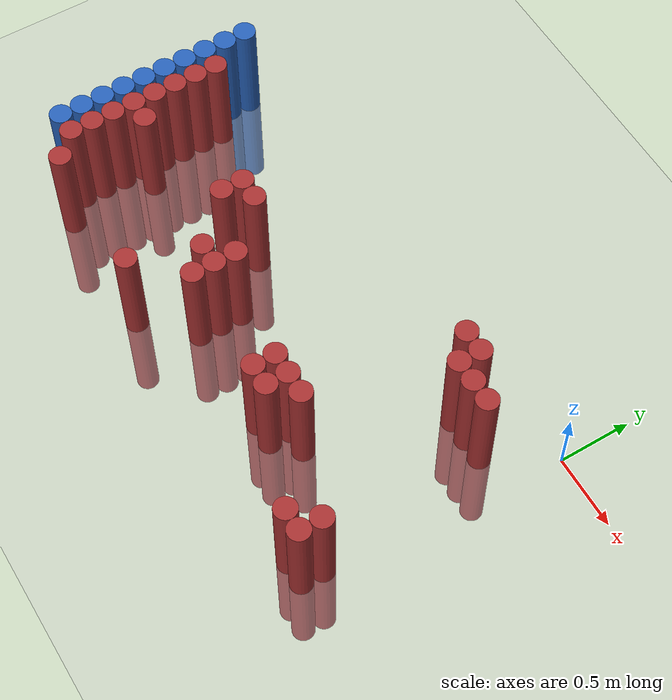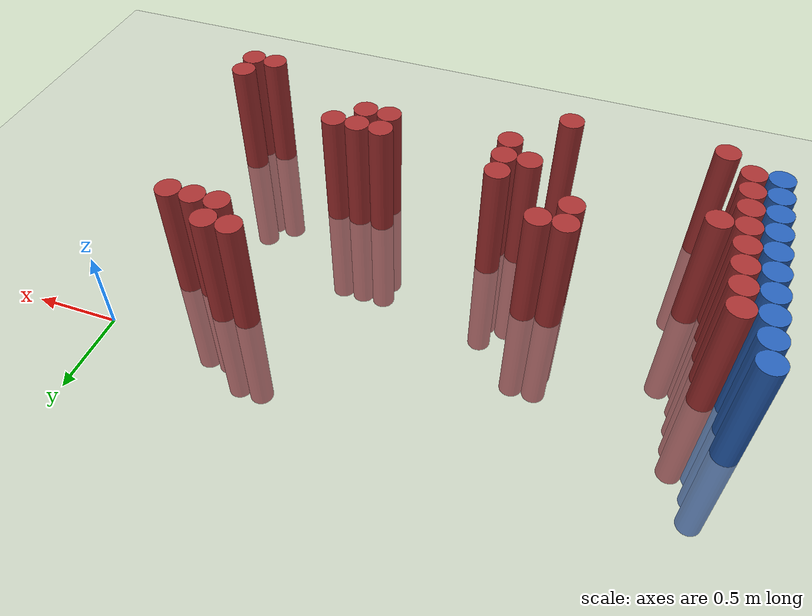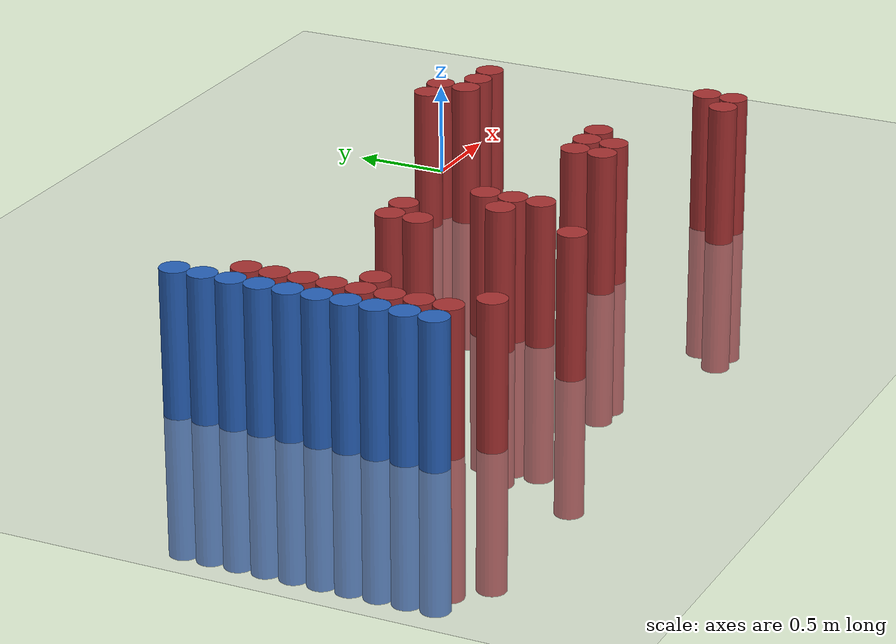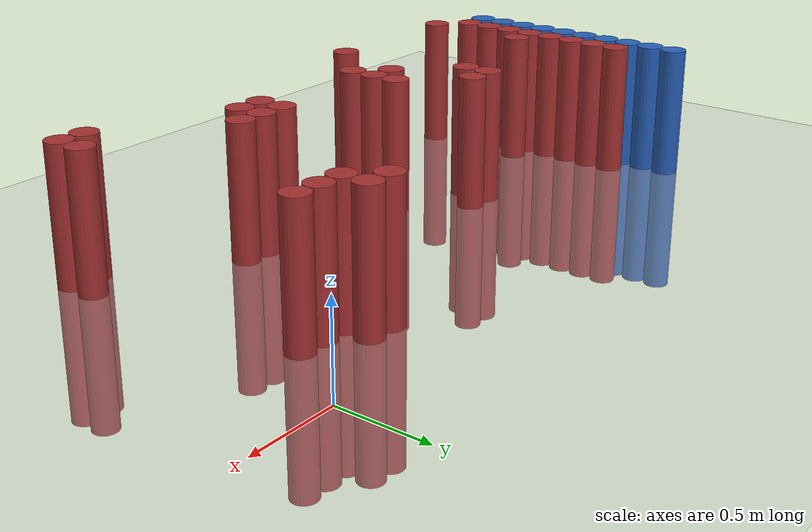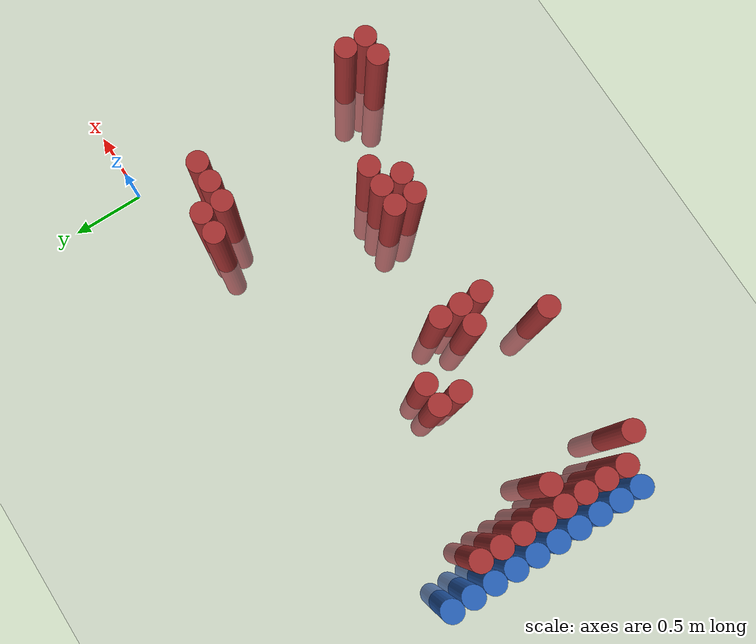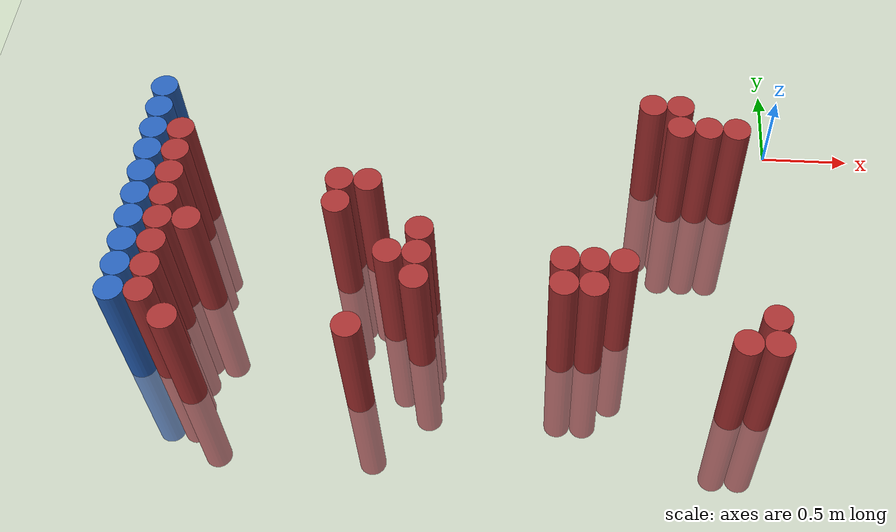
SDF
<sdf version="1.6">
 <world name="default">
  <model name="ground_plane">
   <static>1</static>
   <link name="link">
    <collision name="collision">
     <geometry><plane><normal>0 0 1</normal><size>100 100</size></plane></geometry>
     <surface><friction><ode><mu>100</mu><mu2>50</mu2></ode></friction></surface>
    </collision>
    <visual name="visual">
     <cast_shadows>0</cast_shadows>
     <geometry><plane><normal>0 0 1</normal><size>100 100</size></plane></geometry>
     <material>
      <script><uri>file://media/materials/scripts/gazebo.material</uri><name>Gazebo/Grey</name></script>
     </material>
    </visual>
   </link>
  </model>
  <model name="unit_cylinder_93">
   <static>1</static>
   <pose>-3.425000 -1.625000 0.000000 0.000000 0.000000 0.000000</pose>
   <link name="link">
    <inertial>
     <mass>1</mass>
     <inertia><ixx>0.145833</ixx><ixy>0</ixy><ixz>0</ixz><iyy>0.145833</iyy><iyz>0</iyz><izz>0.125</izz></inertia>
    </inertial>
    <collision name="collision">
     <geometry><cylinder><radius>0.075000</radius><length>1.5</length></cylinder></geometry>
    </collision>
    <visual name="visual">
     <geometry><cylinder><radius>0.075000</radius><length>1.5</length></cylinder></geometry>
     <material>
      <ambient>0.152000 0.379000 0.720000 1</ambient>
      <diffuse>0.152000 0.379000 0.720000 1</diffuse>
     </material>
     <material>
      <script><name>Gazebo/Grey</name><uri>file://media/materials/scripts/gazebo.material</uri></script>
     </material>
    </visual>
   </link>
  </model>
  <model name="unit_cylinder_95">
   <static>1</static>
   <pose>-3.425000 -1.475000 0.000000 0.000000 0.000000 0.000000</pose>
   <link name="link">
    <inertial>
     <mass>1</mass>
     <inertia><ixx>0.145833</ixx><ixy>0</ixy><ixz>0</ixz><iyy>0.145833</iyy><iyz>0</iyz><izz>0.125</izz></inertia>
    </inertial>
    <collision name="collision">
     <geometry><cylinder><radius>0.075000</radius><length>1.5</length></cylinder></geometry>
    </collision>
    <visual name="visual">
     <geometry><cylinder><radius>0.075000</radius><length>1.5</length></cylinder></geometry>
     <material>
      <ambient>0.152000 0.379000 0.720000 1</ambient>
      <diffuse>0.152000 0.379000 0.720000 1</diffuse>
     </material>
     <material>
      <script><name>Gazebo/Grey</name><uri>file://media/materials/scripts/gazebo.material</uri></script>
     </material>
    </visual>
   </link>
  </model>
  <model name="unit_cylinder_97">
   <static>1</static>
   <pose>-3.425000 -1.325000 0.000000 0.000000 0.000000 0.000000</pose>
   <link name="link">
    <inertial>
     <mass>1</mass>
     <inertia><ixx>0.145833</ixx><ixy>0</ixy><ixz>0</ixz><iyy>0.145833</iyy><iyz>0</iyz><izz>0.125</izz></inertia>
    </inertial>
    <collision name="collision">
     <geometry><cylinder><radius>0.075000</radius><length>1.5</length></cylinder></geometry>
    </collision>
    <visual name="visual">
     <geometry><cylinder><radius>0.075000</radius><length>1.5</length></cylinder></geometry>
     <material>
      <ambient>0.152000 0.379000 0.720000 1</ambient>
      <diffuse>0.152000 0.379000 0.720000 1</diffuse>
     </material>
     <material>
      <script><name>Gazebo/Grey</name><uri>file://media/materials/scripts/gazebo.material</uri></script>
     </material>
    </visual>
   </link>
  </model>
  <model name="unit_cylinder_99">
   <static>1</static>
   <pose>-3.425000 -1.175000 0.000000 0.000000 0.000000 0.000000</pose>
   <link name="link">
    <inertial>
     <mass>1</mass>
     <inertia><ixx>0.145833</ixx><ixy>0</ixy><ixz>0</ixz><iyy>0.145833</iyy><iyz>0</iyz><izz>0.125</izz></inertia>
    </inertial>
    <collision name="collision">
     <geometry><cylinder><radius>0.075000</radius><length>1.5</length></cylinder></geometry>
    </collision>
    <visual name="visual">
     <geometry><cylinder><radius>0.075000</radius><length>1.5</length></cylinder></geometry>
     <material>
      <ambient>0.152000 0.379000 0.720000 1</ambient>
      <diffuse>0.152000 0.379000 0.720000 1</diffuse>
     </material>
     <material>
      <script><name>Gazebo/Grey</name><uri>file://media/materials/scripts/gazebo.material</uri></script>
     </material>
    </visual>
   </link>
  </model>
  <model name="unit_cylinder_101">
   <static>1</static>
   <pose>-3.425000 -1.025000 0.000000 0.000000 0.000000 0.000000</pose>
   <link name="link">
    <inertial>
     <mass>1</mass>
     <inertia><ixx>0.145833</ixx><ixy>0</ixy><ixz>0</ixz><iyy>0.145833</iyy><iyz>0</iyz><izz>0.125</izz></inertia>
    </inertial>
    <collision name="collision">
     <geometry><cylinder><radius>0.075000</radius><length>1.5</length></cylinder></geometry>
    </collision>
    <visual name="visual">
     <geometry><cylinder><radius>0.075000</radius><length>1.5</length></cylinder></geometry>
     <material>
      <ambient>0.152000 0.379000 0.720000 1</ambient>
      <diffuse>0.152000 0.379000 0.720000 1</diffuse>
     </material>
     <material>
      <script><name>Gazebo/Grey</name><uri>file://media/materials/scripts/gazebo.material</uri></script>
     </material>
    </visual>
   </link>
  </model>
  <model name="unit_cylinder_103">
   <static>1</static>
   <pose>-3.425000 -0.875000 0.000000 0.000000 0.000000 0.000000</pose>
   <link name="link">
    <inertial>
     <mass>1</mass>
     <inertia><ixx>0.145833</ixx><ixy>0</ixy><ixz>0</ixz><iyy>0.145833</iyy><iyz>0</iyz><izz>0.125</izz></inertia>
    </inertial>
    <collision name="collision">
     <geometry><cylinder><radius>0.075000</radius><length>1.5</length></cylinder></geometry>
    </collision>
    <visual name="visual">
     <geometry><cylinder><radius>0.075000</radius><length>1.5</length></cylinder></geometry>
     <material>
      <ambient>0.152000 0.379000 0.720000 1</ambient>
      <diffuse>0.152000 0.379000 0.720000 1</diffuse>
     </material>
     <material>
      <script><name>Gazebo/Grey</name><uri>file://media/materials/scripts/gazebo.material</uri></script>
     </material>
    </visual>
   </link>
  </model>
  <model name="unit_cylinder_105">
   <static>1</static>
   <pose>-3.425000 -0.725000 0.000000 0.000000 0.000000 0.000000</pose>
   <link name="link">
    <inertial>
     <mass>1</mass>
     <inertia><ixx>0.145833</ixx><ixy>0</ixy><ixz>0</ixz><iyy>0.145833</iyy><iyz>0</iyz><izz>0.125</izz></inertia>
    </inertial>
    <collision name="collision">
     <geometry><cylinder><radius>0.075000</radius><length>1.5</length></cylinder></geometry>
    </collision>
    <visual name="visual">
     <geometry><cylinder><radius>0.075000</radius><length>1.5</length></cylinder></geometry>
     <material>
      <ambient>0.152000 0.379000 0.720000 1</ambient>
      <diffuse>0.152000 0.379000 0.720000 1</diffuse>
     </material>
     <material>
      <script><name>Gazebo/Grey</name><uri>file://media/materials/scripts/gazebo.material</uri></script>
     </material>
    </visual>
   </link>
  </model>
  <model name="unit_cylinder_107">
   <static>1</static>
   <pose>-3.425000 -0.575000 0.000000 0.000000 0.000000 0.000000</pose>
   <link name="link">
    <inertial>
     <mass>1</mass>
     <inertia><ixx>0.145833</ixx><ixy>0</ixy><ixz>0</ixz><iyy>0.145833</iyy><iyz>0</iyz><izz>0.125</izz></inertia>
    </inertial>
    <collision name="collision">
     <geometry><cylinder><radius>0.075000</radius><length>1.5</length></cylinder></geometry>
    </collision>
    <visual name="visual">
     <geometry><cylinder><radius>0.075000</radius><length>1.5</length></cylinder></geometry>
     <material>
      <ambient>0.152000 0.379000 0.720000 1</ambient>
      <diffuse>0.152000 0.379000 0.720000 1</diffuse>
     </material>
     <material>
      <script><name>Gazebo/Grey</name><uri>file://media/materials/scripts/gazebo.material</uri></script>
     </material>
    </visual>
   </link>
  </model>
  <model name="unit_cylinder_109">
   <static>1</static>
   <pose>-3.425000 -0.425000 0.000000 0.000000 0.000000 0.000000</pose>
   <link name="link">
    <inertial>
     <mass>1</mass>
     <inertia><ixx>0.145833</ixx><ixy>0</ixy><ixz>0</ixz><iyy>0.145833</iyy><iyz>0</iyz><izz>0.125</izz></inertia>
    </inertial>
    <collision name="collision">
     <geometry><cylinder><radius>0.075000</radius><length>1.5</length></cylinder></geometry>
    </collision>
    <visual name="visual">
     <geometry><cylinder><radius>0.075000</radius><length>1.5</length></cylinder></geometry>
     <material>
      <ambient>0.152000 0.379000 0.720000 1</ambient>
      <diffuse>0.152000 0.379000 0.720000 1</diffuse>
     </material>
     <material>
      <script><name>Gazebo/Grey</name><uri>file://media/materials/scripts/gazebo.material</uri></script>
     </material>
    </visual>
   </link>
  </model>
  <model name="unit_cylinder_111">
   <static>1</static>
   <pose>-3.425000 -0.275000 0.000000 0.000000 0.000000 0.000000</pose>
   <link name="link">
    <inertial>
     <mass>1</mass>
     <inertia><ixx>0.145833</ixx><ixy>0</ixy><ixz>0</ixz><iyy>0.145833</iyy><iyz>0</iyz><izz>0.125</izz></inertia>
    </inertial>
    <collision name="collision">
     <geometry><cylinder><radius>0.075000</radius><length>1.5</length></cylinder></geometry>
    </collision>
    <visual name="visual">
     <geometry><cylinder><radius>0.075000</radius><length>1.5</length></cylinder></geometry>
     <material>
      <ambient>0.152000 0.379000 0.720000 1</ambient>
      <diffuse>0.152000 0.379000 0.720000 1</diffuse>
     </material>
     <material>
      <script><name>Gazebo/Grey</name><uri>file://media/materials/scripts/gazebo.material</uri></script>
     </material>
    </visual>
   </link>
  </model>
  <model name="unit_cylinder_210">
   <static>1</static>
   <pose>-3.425000 -1.625000 0.000000 0.000000 0.000000 0.000000</pose>
   <link name="link">
    <inertial>
     <mass>1</mass>
     <inertia><ixx>0.145833</ixx><ixy>0</ixy><ixz>0</ixz><iyy>0.145833</iyy><iyz>0</iyz><izz>0.125</izz></inertia>
    </inertial>
    <collision name="collision">
     <geometry><cylinder><radius>0.075000</radius><length>1.5</length></cylinder></geometry>
    </collision>
    <visual name="visual">
     <geometry><cylinder><radius>0.075000</radius><length>1.5</length></cylinder></geometry>
     <material>
      <ambient>0.152000 0.379000 0.720000 1</ambient>
      <diffuse>0.152000 0.379000 0.720000 1</diffuse>
     </material>
     <material>
      <script><name>Gazebo/Grey</name><uri>file://media/materials/scripts/gazebo.material</uri></script>
     </material>
    </visual>
   </link>
  </model>
  <model name="unit_cylinder_211">
   <static>1</static>
   <pose>-3.425000 -1.475000 0.000000 0.000000 0.000000 0.000000</pose>
   <link name="link">
    <inertial>
     <mass>1</mass>
     <inertia><ixx>0.145833</ixx><ixy>0</ixy><ixz>0</ixz><iyy>0.145833</iyy><iyz>0</iyz><izz>0.125</izz></inertia>
    </inertial>
    <collision name="collision">
     <geometry><cylinder><radius>0.075000</radius><length>1.5</length></cylinder></geometry>
    </collision>
    <visual name="visual">
     <geometry><cylinder><radius>0.075000</radius><length>1.5</length></cylinder></geometry>
     <material>
      <ambient>0.152000 0.379000 0.720000 1</ambient>
      <diffuse>0.152000 0.379000 0.720000 1</diffuse>
     </material>
     <material>
      <script><name>Gazebo/Grey</name><uri>file://media/materials/scripts/gazebo.material</uri></script>
     </material>
    </visual>
   </link>
  </model>
  <model name="unit_cylinder_212">
   <static>1</static>
   <pose>-3.425000 -1.325000 0.000000 0.000000 0.000000 0.000000</pose>
   <link name="link">
    <inertial>
     <mass>1</mass>
     <inertia><ixx>0.145833</ixx><ixy>0</ixy><ixz>0</ixz><iyy>0.145833</iyy><iyz>0</iyz><izz>0.125</izz></inertia>
    </inertial>
    <collision name="collision">
     <geometry><cylinder><radius>0.075000</radius><length>1.5</length></cylinder></geometry>
    </collision>
    <visual name="visual">
     <geometry><cylinder><radius>0.075000</radius><length>1.5</length></cylinder></geometry>
     <material>
      <ambient>0.152000 0.379000 0.720000 1</ambient>
      <diffuse>0.152000 0.379000 0.720000 1</diffuse>
     </material>
     <material>
      <script><name>Gazebo/Grey</name><uri>file://media/materials/scripts/gazebo.material</uri></script>
     </material>
    </visual>
   </link>
  </model>
  <model name="unit_cylinder_213">
   <static>1</static>
   <pose>-3.425000 -1.175000 0.000000 0.000000 0.000000 0.000000</pose>
   <link name="link">
    <inertial>
     <mass>1</mass>
     <inertia><ixx>0.145833</ixx><ixy>0</ixy><ixz>0</ixz><iyy>0.145833</iyy><iyz>0</iyz><izz>0.125</izz></inertia>
    </inertial>
    <collision name="collision">
     <geometry><cylinder><radius>0.075000</radius><length>1.5</length></cylinder></geometry>
    </collision>
    <visual name="visual">
     <geometry><cylinder><radius>0.075000</radius><length>1.5</length></cylinder></geometry>
     <material>
      <ambient>0.152000 0.379000 0.720000 1</ambient>
      <diffuse>0.152000 0.379000 0.720000 1</diffuse>
     </material>
     <material>
      <script><name>Gazebo/Grey</name><uri>file://media/materials/scripts/gazebo.material</uri></script>
     </material>
    </visual>
   </link>
  </model>
  <model name="unit_cylinder_214">
   <static>1</static>
   <pose>-3.425000 -1.025000 0.000000 0.000000 0.000000 0.000000</pose>
   <link name="link">
    <inertial>
     <mass>1</mass>
     <inertia><ixx>0.145833</ixx><ixy>0</ixy><ixz>0</ixz><iyy>0.145833</iyy><iyz>0</iyz><izz>0.125</izz></inertia>
    </inertial>
    <collision name="collision">
     <geometry><cylinder><radius>0.075000</radius><length>1.5</length></cylinder></geometry>
    </collision>
    <visual name="visual">
     <geometry><cylinder><radius>0.075000</radius><length>1.5</length></cylinder></geometry>
     <material>
      <ambient>0.152000 0.379000 0.720000 1</ambient>
      <diffuse>0.152000 0.379000 0.720000 1</diffuse>
     </material>
     <material>
      <script><name>Gazebo/Grey</name><uri>file://media/materials/scripts/gazebo.material</uri></script>
     </material>
    </visual>
   </link>
  </model>
  <model name="unit_cylinder_215">
   <static>1</static>
   <pose>-3.425000 -0.875000 0.000000 0.000000 0.000000 0.000000</pose>
   <link name="link">
    <inertial>
     <mass>1</mass>
     <inertia><ixx>0.145833</ixx><ixy>0</ixy><ixz>0</ixz><iyy>0.145833</iyy><iyz>0</iyz><izz>0.125</izz></inertia>
    </inertial>
    <collision name="collision">
     <geometry><cylinder><radius>0.075000</radius><length>1.5</length></cylinder></geometry>
    </collision>
    <visual name="visual">
     <geometry><cylinder><radius>0.075000</radius><length>1.5</length></cylinder></geometry>
     <material>
      <ambient>0.152000 0.379000 0.720000 1</ambient>
      <diffuse>0.152000 0.379000 0.720000 1</diffuse>
     </material>
     <material>
      <script><name>Gazebo/Grey</name><uri>file://media/materials/scripts/gazebo.material</uri></script>
     </material>
    </visual>
   </link>
  </model>
  <model name="unit_cylinder_216">
   <static>1</static>
   <pose>-3.425000 -0.725000 0.000000 0.000000 0.000000 0.000000</pose>
   <link name="link">
    <inertial>
     <mass>1</mass>
     <inertia><ixx>0.145833</ixx><ixy>0</ixy><ixz>0</ixz><iyy>0.145833</iyy><iyz>0</iyz><izz>0.125</izz></inertia>
    </inertial>
    <collision name="collision">
     <geometry><cylinder><radius>0.075000</radius><length>1.5</length></cylinder></geometry>
    </collision>
    <visual name="visual">
     <geometry><cylinder><radius>0.075000</radius><length>1.5</length></cylinder></geometry>
     <material>
      <ambient>0.152000 0.379000 0.720000 1</ambient>
      <diffuse>0.152000 0.379000 0.720000 1</diffuse>
     </material>
     <material>
      <script><name>Gazebo/Grey</name><uri>file://media/materials/scripts/gazebo.material</uri></script>
     </material>
    </visual>
   </link>
  </model>
  <model name="unit_cylinder_217">
   <static>1</static>
   <pose>-3.425000 -0.575000 0.000000 0.000000 0.000000 0.000000</pose>
   <link name="link">
    <inertial>
     <mass>1</mass>
     <inertia><ixx>0.145833</ixx><ixy>0</ixy><ixz>0</ixz><iyy>0.145833</iyy><iyz>0</iyz><izz>0.125</izz></inertia>
    </inertial>
    <collision name="collision">
     <geometry><cylinder><radius>0.075000</radius><length>1.5</length></cylinder></geometry>
    </collision>
    <visual name="visual">
     <geometry><cylinder><radius>0.075000</radius><length>1.5</length></cylinder></geometry>
     <material>
      <ambient>0.152000 0.379000 0.720000 1</ambient>
      <diffuse>0.152000 0.379000 0.720000 1</diffuse>
     </material>
     <material>
      <script><name>Gazebo/Grey</name><uri>file://media/materials/scripts/gazebo.material</uri></script>
     </material>
    </visual>
   </link>
  </model>
  <model name="unit_cylinder_218">
   <static>1</static>
   <pose>-3.425000 -0.425000 0.000000 0.000000 0.000000 0.000000</pose>
   <link name="link">
    <inertial>
     <mass>1</mass>
     <inertia><ixx>0.145833</ixx><ixy>0</ixy><ixz>0</ixz><iyy>0.145833</iyy><iyz>0</iyz><izz>0.125</izz></inertia>
    </inertial>
    <collision name="collision">
     <geometry><cylinder><radius>0.075000</radius><length>1.5</length></cylinder></geometry>
    </collision>
    <visual name="visual">
     <geometry><cylinder><radius>0.075000</radius><length>1.5</length></cylinder></geometry>
     <material>
      <ambient>0.152000 0.379000 0.720000 1</ambient>
      <diffuse>0.152000 0.379000 0.720000 1</diffuse>
     </material>
     <material>
      <script><name>Gazebo/Grey</name><uri>file://media/materials/scripts/gazebo.material</uri></script>
     </material>
    </visual>
   </link>
  </model>
  <model name="unit_cylinder_219">
   <static>1</static>
   <pose>-3.425000 -0.275000 0.000000 0.000000 0.000000 0.000000</pose>
   <link name="link">
    <inertial>
     <mass>1</mass>
     <inertia><ixx>0.145833</ixx><ixy>0</ixy><ixz>0</ixz><iyy>0.145833</iyy><iyz>0</iyz><izz>0.125</izz></inertia>
    </inertial>
    <collision name="collision">
     <geometry><cylinder><radius>0.075000</radius><length>1.5</length></cylinder></geometry>
    </collision>
    <visual name="visual">
     <geometry><cylinder><radius>0.075000</radius><length>1.5</length></cylinder></geometry>
     <material>
      <ambient>0.152000 0.379000 0.720000 1</ambient>
      <diffuse>0.152000 0.379000 0.720000 1</diffuse>
     </material>
     <material>
      <script><name>Gazebo/Grey</name><uri>file://media/materials/scripts/gazebo.material</uri></script>
     </material>
    </visual>
   </link>
  </model>
  <model name="unit_cylinder_259">
   <static>1</static>
   <pose>-3.275000 -1.625000 0.000000 0.000000 0.000000 0.000000</pose>
   <link name="link">
    <inertial>
     <mass>1</mass>
     <inertia><ixx>0.145833</ixx><ixy>0</ixy><ixz>0</ixz><iyy>0.145833</iyy><iyz>0</iyz><izz>0.125</izz></inertia>
    </inertial>
    <collision name="collision">
     <geometry><cylinder><radius>0.075000</radius><length>1.5</length></cylinder></geometry>
    </collision>
    <visual name="visual">
     <geometry><cylinder><radius>0.075000</radius><length>1.5</length></cylinder></geometry>
     <material>
      <ambient>0.648000 0.192000 0.192000 1</ambient>
      <diffuse>0.648000 0.192000 0.192000 1</diffuse>
     </material>
     <material>
      <script><name>Gazebo/Grey</name><uri>file://media/materials/scripts/gazebo.material</uri></script>
     </material>
    </visual>
   </link>
  </model>
  <model name="unit_cylinder_260">
   <static>1</static>
   <pose>-3.275000 -1.475000 0.000000 0.000000 0.000000 0.000000</pose>
   <link name="link">
    <inertial>
     <mass>1</mass>
     <inertia><ixx>0.145833</ixx><ixy>0</ixy><ixz>0</ixz><iyy>0.145833</iyy><iyz>0</iyz><izz>0.125</izz></inertia>
    </inertial>
    <collision name="collision">
     <geometry><cylinder><radius>0.075000</radius><length>1.5</length></cylinder></geometry>
    </collision>
    <visual name="visual">
     <geometry><cylinder><radius>0.075000</radius><length>1.5</length></cylinder></geometry>
     <material>
      <ambient>0.648000 0.192000 0.192000 1</ambient>
      <diffuse>0.648000 0.192000 0.192000 1</diffuse>
     </material>
     <material>
      <script><name>Gazebo/Grey</name><uri>file://media/materials/scripts/gazebo.material</uri></script>
     </material>
    </visual>
   </link>
  </model>
  <model name="unit_cylinder_261">
   <static>1</static>
   <pose>-3.275000 -1.325000 0.000000 0.000000 0.000000 0.000000</pose>
   <link name="link">
    <inertial>
     <mass>1</mass>
     <inertia><ixx>0.145833</ixx><ixy>0</ixy><ixz>0</ixz><iyy>0.145833</iyy><iyz>0</iyz><izz>0.125</izz></inertia>
    </inertial>
    <collision name="collision">
     <geometry><cylinder><radius>0.075000</radius><length>1.5</length></cylinder></geometry>
    </collision>
    <visual name="visual">
     <geometry><cylinder><radius>0.075000</radius><length>1.5</length></cylinder></geometry>
     <material>
      <ambient>0.648000 0.192000 0.192000 1</ambient>
      <diffuse>0.648000 0.192000 0.192000 1</diffuse>
     </material>
     <material>
      <script><name>Gazebo/Grey</name><uri>file://media/materials/scripts/gazebo.material</uri></script>
     </material>
    </visual>
   </link>
  </model>
  <model name="unit_cylinder_262">
   <static>1</static>
   <pose>-3.275000 -1.175000 0.000000 0.000000 0.000000 0.000000</pose>
   <link name="link">
    <inertial>
     <mass>1</mass>
     <inertia><ixx>0.145833</ixx><ixy>0</ixy><ixz>0</ixz><iyy>0.145833</iyy><iyz>0</iyz><izz>0.125</izz></inertia>
    </inertial>
    <collision name="collision">
     <geometry><cylinder><radius>0.075000</radius><length>1.5</length></cylinder></geometry>
    </collision>
    <visual name="visual">
     <geometry><cylinder><radius>0.075000</radius><length>1.5</length></cylinder></geometry>
     <material>
      <ambient>0.648000 0.192000 0.192000 1</ambient>
      <diffuse>0.648000 0.192000 0.192000 1</diffuse>
     </material>
     <material>
      <script><name>Gazebo/Grey</name><uri>file://media/materials/scripts/gazebo.material</uri></script>
     </material>
    </visual>
   </link>
  </model>
  <model name="unit_cylinder_263">
   <static>1</static>
   <pose>-3.275000 -1.025000 0.000000 0.000000 0.000000 0.000000</pose>
   <link name="link">
    <inertial>
     <mass>1</mass>
     <inertia><ixx>0.145833</ixx><ixy>0</ixy><ixz>0</ixz><iyy>0.145833</iyy><iyz>0</iyz><izz>0.125</izz></inertia>
    </inertial>
    <collision name="collision">
     <geometry><cylinder><radius>0.075000</radius><length>1.5</length></cylinder></geometry>
    </collision>
    <visual name="visual">
     <geometry><cylinder><radius>0.075000</radius><length>1.5</length></cylinder></geometry>
     <material>
      <ambient>0.648000 0.192000 0.192000 1</ambient>
      <diffuse>0.648000 0.192000 0.192000 1</diffuse>
     </material>
     <material>
      <script><name>Gazebo/Grey</name><uri>file://media/materials/scripts/gazebo.material</uri></script>
     </material>
    </visual>
   </link>
  </model>
  <model name="unit_cylinder_264">
   <static>1</static>
   <pose>-3.275000 -0.875000 0.000000 0.000000 0.000000 0.000000</pose>
   <link name="link">
    <inertial>
     <mass>1</mass>
     <inertia><ixx>0.145833</ixx><ixy>0</ixy><ixz>0</ixz><iyy>0.145833</iyy><iyz>0</iyz><izz>0.125</izz></inertia>
    </inertial>
    <collision name="collision">
     <geometry><cylinder><radius>0.075000</radius><length>1.5</length></cylinder></geometry>
    </collision>
    <visual name="visual">
     <geometry><cylinder><radius>0.075000</radius><length>1.5</length></cylinder></geometry>
     <material>
      <ambient>0.648000 0.192000 0.192000 1</ambient>
      <diffuse>0.648000 0.192000 0.192000 1</diffuse>
     </material>
     <material>
      <script><name>Gazebo/Grey</name><uri>file://media/materials/scripts/gazebo.material</uri></script>
     </material>
    </visual>
   </link>
  </model>
  <model name="unit_cylinder_265">
   <static>1</static>
   <pose>-3.275000 -0.725000 0.000000 0.000000 0.000000 0.000000</pose>
   <link name="link">
    <inertial>
     <mass>1</mass>
     <inertia><ixx>0.145833</ixx><ixy>0</ixy><ixz>0</ixz><iyy>0.145833</iyy><iyz>0</iyz><izz>0.125</izz></inertia>
    </inertial>
    <collision name="collision">
     <geometry><cylinder><radius>0.075000</radius><length>1.5</length></cylinder></geometry>
    </collision>
    <visual name="visual">
     <geometry><cylinder><radius>0.075000</radius><length>1.5</length></cylinder></geometry>
     <material>
      <ambient>0.648000 0.192000 0.192000 1</ambient>
      <diffuse>0.648000 0.192000 0.192000 1</diffuse>
     </material>
     <material>
      <script><name>Gazebo/Grey</name><uri>file://media/materials/scripts/gazebo.material</uri></script>
     </material>
    </visual>
   </link>
  </model>
  <model name="unit_cylinder_266">
   <static>1</static>
   <pose>-3.275000 -0.575000 0.000000 0.000000 0.000000 0.000000</pose>
   <link name="link">
    <inertial>
     <mass>1</mass>
     <inertia><ixx>0.145833</ixx><ixy>0</ixy><ixz>0</ixz><iyy>0.145833</iyy><iyz>0</iyz><izz>0.125</izz></inertia>
    </inertial>
    <collision name="collision">
     <geometry><cylinder><radius>0.075000</radius><length>1.5</length></cylinder></geometry>
    </collision>
    <visual name="visual">
     <geometry><cylinder><radius>0.075000</radius><length>1.5</length></cylinder></geometry>
     <material>
      <ambient>0.648000 0.192000 0.192000 1</ambient>
      <diffuse>0.648000 0.192000 0.192000 1</diffuse>
     </material>
     <material>
      <script><name>Gazebo/Grey</name><uri>file://media/materials/scripts/gazebo.material</uri></script>
     </material>
    </visual>
   </link>
  </model>
  <model name="unit_cylinder_286">
   <static>1</static>
   <pose>-3.125000 -1.775000 0.000000 0.000000 0.000000 0.000000</pose>
   <link name="link">
    <inertial>
     <mass>1</mass>
     <inertia><ixx>0.145833</ixx><ixy>0</ixy><ixz>0</ixz><iyy>0.145833</iyy><iyz>0</iyz><izz>0.125</izz></inertia>
    </inertial>
    <collision name="collision">
     <geometry><cylinder><radius>0.075000</radius><length>1.5</length></cylinder></geometry>
    </collision>
    <visual name="visual">
     <geometry><cylinder><radius>0.075000</radius><length>1.5</length></cylinder></geometry>
     <material>
      <ambient>0.648000 0.192000 0.192000 1</ambient>
      <diffuse>0.648000 0.192000 0.192000 1</diffuse>
     </material>
     <material>
      <script><name>Gazebo/Grey</name><uri>file://media/materials/scripts/gazebo.material</uri></script>
     </material>
    </visual>
   </link>
  </model>
  <model name="unit_cylinder_287">
   <static>1</static>
   <pose>-3.125000 -1.175000 0.000000 0.000000 0.000000 0.000000</pose>
   <link name="link">
    <inertial>
     <mass>1</mass>
     <inertia><ixx>0.145833</ixx><ixy>0</ixy><ixz>0</ixz><iyy>0.145833</iyy><iyz>0</iyz><izz>0.125</izz></inertia>
    </inertial>
    <collision name="collision">
     <geometry><cylinder><radius>0.075000</radius><length>1.5</length></cylinder></geometry>
    </collision>
    <visual name="visual">
     <geometry><cylinder><radius>0.075000</radius><length>1.5</length></cylinder></geometry>
     <material>
      <ambient>0.648000 0.192000 0.192000 1</ambient>
      <diffuse>0.648000 0.192000 0.192000 1</diffuse>
     </material>
     <material>
      <script><name>Gazebo/Grey</name><uri>file://media/materials/scripts/gazebo.material</uri></script>
     </material>
    </visual>
   </link>
  </model>
  <model name="unit_cylinder_315">
   <static>1</static>
   <pose>-2.375000 -1.025000 0.000000 0.000000 0.000000 0.000000</pose>
   <link name="link">
    <inertial>
     <mass>1</mass>
     <inertia><ixx>0.145833</ixx><ixy>0</ixy><ixz>0</ixz><iyy>0.145833</iyy><iyz>0</iyz><izz>0.125</izz></inertia>
    </inertial>
    <collision name="collision">
     <geometry><cylinder><radius>0.075000</radius><length>1.5</length></cylinder></geometry>
    </collision>
    <visual name="visual">
     <geometry><cylinder><radius>0.075000</radius><length>1.5</length></cylinder></geometry>
     <material>
      <ambient>0.648000 0.192000 0.192000 1</ambient>
      <diffuse>0.648000 0.192000 0.192000 1</diffuse>
     </material>
     <material>
      <script><name>Gazebo/Grey</name><uri>file://media/materials/scripts/gazebo.material</uri></script>
     </material>
    </visual>
   </link>
  </model>
  <model name="unit_cylinder_316">
   <static>1</static>
   <pose>-2.375000 -0.875000 0.000000 0.000000 0.000000 0.000000</pose>
   <link name="link">
    <inertial>
     <mass>1</mass>
     <inertia><ixx>0.145833</ixx><ixy>0</ixy><ixz>0</ixz><iyy>0.145833</iyy><iyz>0</iyz><izz>0.125</izz></inertia>
    </inertial>
    <collision name="collision">
     <geometry><cylinder><radius>0.075000</radius><length>1.5</length></cylinder></geometry>
    </collision>
    <visual name="visual">
     <geometry><cylinder><radius>0.075000</radius><length>1.5</length></cylinder></geometry>
     <material>
      <ambient>0.648000 0.192000 0.192000 1</ambient>
      <diffuse>0.648000 0.192000 0.192000 1</diffuse>
     </material>
     <material>
      <script><name>Gazebo/Grey</name><uri>file://media/materials/scripts/gazebo.material</uri></script>
     </material>
    </visual>
   </link>
  </model>
  <model name="unit_cylinder_329">
   <static>1</static>
   <pose>-2.225000 -1.775000 0.000000 0.000000 0.000000 0.000000</pose>
   <link name="link">
    <inertial>
     <mass>1</mass>
     <inertia><ixx>0.145833</ixx><ixy>0</ixy><ixz>0</ixz><iyy>0.145833</iyy><iyz>0</iyz><izz>0.125</izz></inertia>
    </inertial>
    <collision name="collision">
     <geometry><cylinder><radius>0.075000</radius><length>1.5</length></cylinder></geometry>
    </collision>
    <visual name="visual">
     <geometry><cylinder><radius>0.075000</radius><length>1.5</length></cylinder></geometry>
     <material>
      <ambient>0.648000 0.192000 0.192000 1</ambient>
      <diffuse>0.648000 0.192000 0.192000 1</diffuse>
     </material>
     <material>
      <script><name>Gazebo/Grey</name><uri>file://media/materials/scripts/gazebo.material</uri></script>
     </material>
    </visual>
   </link>
  </model>
  <model name="unit_cylinder_330">
   <static>1</static>
   <pose>-2.225000 -0.875000 0.000000 0.000000 0.000000 0.000000</pose>
   <link name="link">
    <inertial>
     <mass>1</mass>
     <inertia><ixx>0.145833</ixx><ixy>0</ixy><ixz>0</ixz><iyy>0.145833</iyy><iyz>0</iyz><izz>0.125</izz></inertia>
    </inertial>
    <collision name="collision">
     <geometry><cylinder><radius>0.075000</radius><length>1.5</length></cylinder></geometry>
    </collision>
    <visual name="visual">
     <geometry><cylinder><radius>0.075000</radius><length>1.5</length></cylinder></geometry>
     <material>
      <ambient>0.648000 0.192000 0.192000 1</ambient>
      <diffuse>0.648000 0.192000 0.192000 1</diffuse>
     </material>
     <material>
      <script><name>Gazebo/Grey</name><uri>file://media/materials/scripts/gazebo.material</uri></script>
     </material>
    </visual>
   </link>
  </model>
  <model name="unit_cylinder_338">
   <static>1</static>
   <pose>-2.075000 -1.325000 0.000000 0.000000 0.000000 0.000000</pose>
   <link name="link">
    <inertial>
     <mass>1</mass>
     <inertia><ixx>0.145833</ixx><ixy>0</ixy><ixz>0</ixz><iyy>0.145833</iyy><iyz>0</iyz><izz>0.125</izz></inertia>
    </inertial>
    <collision name="collision">
     <geometry><cylinder><radius>0.075000</radius><length>1.5</length></cylinder></geometry>
    </collision>
    <visual name="visual">
     <geometry><cylinder><radius>0.075000</radius><length>1.5</length></cylinder></geometry>
     <material>
      <ambient>0.648000 0.192000 0.192000 1</ambient>
      <diffuse>0.648000 0.192000 0.192000 1</diffuse>
     </material>
     <material>
      <script><name>Gazebo/Grey</name><uri>file://media/materials/scripts/gazebo.material</uri></script>
     </material>
    </visual>
   </link>
  </model>
  <model name="unit_cylinder_347">
   <static>1</static>
   <pose>-1.925000 -1.475000 0.000000 0.000000 0.000000 0.000000</pose>
   <link name="link">
    <inertial>
     <mass>1</mass>
     <inertia><ixx>0.145833</ixx><ixy>0</ixy><ixz>0</ixz><iyy>0.145833</iyy><iyz>0</iyz><izz>0.125</izz></inertia>
    </inertial>
    <collision name="collision">
     <geometry><cylinder><radius>0.075000</radius><length>1.5</length></cylinder></geometry>
    </collision>
    <visual name="visual">
     <geometry><cylinder><radius>0.075000</radius><length>1.5</length></cylinder></geometry>
     <material>
      <ambient>0.648000 0.192000 0.192000 1</ambient>
      <diffuse>0.648000 0.192000 0.192000 1</diffuse>
     </material>
     <material>
      <script><name>Gazebo/Grey</name><uri>file://media/materials/scripts/gazebo.material</uri></script>
     </material>
    </visual>
   </link>
  </model>
  <model name="unit_cylinder_348">
   <static>1</static>
   <pose>-1.925000 -1.325000 0.000000 0.000000 0.000000 0.000000</pose>
   <link name="link">
    <inertial>
     <mass>1</mass>
     <inertia><ixx>0.145833</ixx><ixy>0</ixy><ixz>0</ixz><iyy>0.145833</iyy><iyz>0</iyz><izz>0.125</izz></inertia>
    </inertial>
    <collision name="collision">
     <geometry><cylinder><radius>0.075000</radius><length>1.5</length></cylinder></geometry>
    </collision>
    <visual name="visual">
     <geometry><cylinder><radius>0.075000</radius><length>1.5</length></cylinder></geometry>
     <material>
      <ambient>0.648000 0.192000 0.192000 1</ambient>
      <diffuse>0.648000 0.192000 0.192000 1</diffuse>
     </material>
     <material>
      <script><name>Gazebo/Grey</name><uri>file://media/materials/scripts/gazebo.material</uri></script>
     </material>
    </visual>
   </link>
  </model>
  <model name="unit_cylinder_349">
   <static>1</static>
   <pose>-1.925000 -1.175000 0.000000 0.000000 0.000000 0.000000</pose>
   <link name="link">
    <inertial>
     <mass>1</mass>
     <inertia><ixx>0.145833</ixx><ixy>0</ixy><ixz>0</ixz><iyy>0.145833</iyy><iyz>0</iyz><izz>0.125</izz></inertia>
    </inertial>
    <collision name="collision">
     <geometry><cylinder><radius>0.075000</radius><length>1.5</length></cylinder></geometry>
    </collision>
    <visual name="visual">
     <geometry><cylinder><radius>0.075000</radius><length>1.5</length></cylinder></geometry>
     <material>
      <ambient>0.648000 0.192000 0.192000 1</ambient>
      <diffuse>0.648000 0.192000 0.192000 1</diffuse>
     </material>
     <material>
      <script><name>Gazebo/Grey</name><uri>file://media/materials/scripts/gazebo.material</uri></script>
     </material>
    </visual>
   </link>
  </model>
  <model name="unit_cylinder_377">
   <static>1</static>
   <pose>-1.175000 -1.475000 0.000000 0.000000 0.000000 0.000000</pose>
   <link name="link">
    <inertial>
     <mass>1</mass>
     <inertia><ixx>0.145833</ixx><ixy>0</ixy><ixz>0</ixz><iyy>0.145833</iyy><iyz>0</iyz><izz>0.125</izz></inertia>
    </inertial>
    <collision name="collision">
     <geometry><cylinder><radius>0.075000</radius><length>1.5</length></cylinder></geometry>
    </collision>
    <visual name="visual">
     <geometry><cylinder><radius>0.075000</radius><length>1.5</length></cylinder></geometry>
     <material>
      <ambient>0.648000 0.192000 0.192000 1</ambient>
      <diffuse>0.648000 0.192000 0.192000 1</diffuse>
     </material>
     <material>
      <script><name>Gazebo/Grey</name><uri>file://media/materials/scripts/gazebo.material</uri></script>
     </material>
    </visual>
   </link>
  </model>
  <model name="unit_cylinder_378">
   <static>1</static>
   <pose>-1.175000 -1.325000 0.000000 0.000000 0.000000 0.000000</pose>
   <link name="link">
    <inertial>
     <mass>1</mass>
     <inertia><ixx>0.145833</ixx><ixy>0</ixy><ixz>0</ixz><iyy>0.145833</iyy><iyz>0</iyz><izz>0.125</izz></inertia>
    </inertial>
    <collision name="collision">
     <geometry><cylinder><radius>0.075000</radius><length>1.5</length></cylinder></geometry>
    </collision>
    <visual name="visual">
     <geometry><cylinder><radius>0.075000</radius><length>1.5</length></cylinder></geometry>
     <material>
      <ambient>0.648000 0.192000 0.192000 1</ambient>
      <diffuse>0.648000 0.192000 0.192000 1</diffuse>
     </material>
     <material>
      <script><name>Gazebo/Grey</name><uri>file://media/materials/scripts/gazebo.material</uri></script>
     </material>
    </visual>
   </link>
  </model>
  <model name="unit_cylinder_381">
   <static>1</static>
   <pose>-1.025000 -1.475000 0.000000 0.000000 0.000000 0.000000</pose>
   <link name="link">
    <inertial>
     <mass>1</mass>
     <inertia><ixx>0.145833</ixx><ixy>0</ixy><ixz>0</ixz><iyy>0.145833</iyy><iyz>0</iyz><izz>0.125</izz></inertia>
    </inertial>
    <collision name="collision">
     <geometry><cylinder><radius>0.075000</radius><length>1.5</length></cylinder></geometry>
    </collision>
    <visual name="visual">
     <geometry><cylinder><radius>0.075000</radius><length>1.5</length></cylinder></geometry>
     <material>
      <ambient>0.648000 0.192000 0.192000 1</ambient>
      <diffuse>0.648000 0.192000 0.192000 1</diffuse>
     </material>
     <material>
      <script><name>Gazebo/Grey</name><uri>file://media/materials/scripts/gazebo.material</uri></script>
     </material>
    </visual>
   </link>
  </model>
  <model name="unit_cylinder_382">
   <static>1</static>
   <pose>-1.025000 -1.325000 0.000000 0.000000 0.000000 0.000000</pose>
   <link name="link">
    <inertial>
     <mass>1</mass>
     <inertia><ixx>0.145833</ixx><ixy>0</ixy><ixz>0</ixz><iyy>0.145833</iyy><iyz>0</iyz><izz>0.125</izz></inertia>
    </inertial>
    <collision name="collision">
     <geometry><cylinder><radius>0.075000</radius><length>1.5</length></cylinder></geometry>
    </collision>
    <visual name="visual">
     <geometry><cylinder><radius>0.075000</radius><length>1.5</length></cylinder></geometry>
     <material>
      <ambient>0.648000 0.192000 0.192000 1</ambient>
      <diffuse>0.648000 0.192000 0.192000 1</diffuse>
     </material>
     <material>
      <script><name>Gazebo/Grey</name><uri>file://media/materials/scripts/gazebo.material</uri></script>
     </material>
    </visual>
   </link>
  </model>
  <model name="unit_cylinder_386">
   <static>1</static>
   <pose>-0.875000 -1.325000 0.000000 0.000000 0.000000 0.000000</pose>
   <link name="link">
    <inertial>
     <mass>1</mass>
     <inertia><ixx>0.145833</ixx><ixy>0</ixy><ixz>0</ixz><iyy>0.145833</iyy><iyz>0</iyz><izz>0.125</izz></inertia>
    </inertial>
    <collision name="collision">
     <geometry><cylinder><radius>0.075000</radius><length>1.5</length></cylinder></geometry>
    </collision>
    <visual name="visual">
     <geometry><cylinder><radius>0.075000</radius><length>1.5</length></cylinder></geometry>
     <material>
      <ambient>0.648000 0.192000 0.192000 1</ambient>
      <diffuse>0.648000 0.192000 0.192000 1</diffuse>
     </material>
     <material>
      <script><name>Gazebo/Grey</name><uri>file://media/materials/scripts/gazebo.material</uri></script>
     </material>
    </visual>
   </link>
  </model>
  <model name="unit_cylinder_389">
   <static>1</static>
   <pose>-0.725000 -0.275000 0.000000 0.000000 0.000000 0.000000</pose>
   <link name="link">
    <inertial>
     <mass>1</mass>
     <inertia><ixx>0.145833</ixx><ixy>0</ixy><ixz>0</ixz><iyy>0.145833</iyy><iyz>0</iyz><izz>0.125</izz></inertia>
    </inertial>
    <collision name="collision">
     <geometry><cylinder><radius>0.075000</radius><length>1.5</length></cylinder></geometry>
    </collision>
    <visual name="visual">
     <geometry><cylinder><radius>0.075000</radius><length>1.5</length></cylinder></geometry>
     <material>
      <ambient>0.648000 0.192000 0.192000 1</ambient>
      <diffuse>0.648000 0.192000 0.192000 1</diffuse>
     </material>
     <material>
      <script><name>Gazebo/Grey</name><uri>file://media/materials/scripts/gazebo.material</uri></script>
     </material>
    </visual>
   </link>
  </model>
  <model name="unit_cylinder_391">
   <static>1</static>
   <pose>-0.575000 -0.425000 0.000000 0.000000 0.000000 0.000000</pose>
   <link name="link">
    <inertial>
     <mass>1</mass>
     <inertia><ixx>0.145833</ixx><ixy>0</ixy><ixz>0</ixz><iyy>0.145833</iyy><iyz>0</iyz><izz>0.125</izz></inertia>
    </inertial>
    <collision name="collision">
     <geometry><cylinder><radius>0.075000</radius><length>1.5</length></cylinder></geometry>
    </collision>
    <visual name="visual">
     <geometry><cylinder><radius>0.075000</radius><length>1.5</length></cylinder></geometry>
     <material>
      <ambient>0.648000 0.192000 0.192000 1</ambient>
      <diffuse>0.648000 0.192000 0.192000 1</diffuse>
     </material>
     <material>
      <script><name>Gazebo/Grey</name><uri>file://media/materials/scripts/gazebo.material</uri></script>
     </material>
    </visual>
   </link>
  </model>
  <model name="unit_cylinder_392">
   <static>1</static>
   <pose>-0.575000 -0.275000 0.000000 0.000000 0.000000 0.000000</pose>
   <link name="link">
    <inertial>
     <mass>1</mass>
     <inertia><ixx>0.145833</ixx><ixy>0</ixy><ixz>0</ixz><iyy>0.145833</iyy><iyz>0</iyz><izz>0.125</izz></inertia>
    </inertial>
    <collision name="collision">
     <geometry><cylinder><radius>0.075000</radius><length>1.5</length></cylinder></geometry>
    </collision>
    <visual name="visual">
     <geometry><cylinder><radius>0.075000</radius><length>1.5</length></cylinder></geometry>
     <material>
      <ambient>0.648000 0.192000 0.192000 1</ambient>
      <diffuse>0.648000 0.192000 0.192000 1</diffuse>
     </material>
     <material>
      <script><name>Gazebo/Grey</name><uri>file://media/materials/scripts/gazebo.material</uri></script>
     </material>
    </visual>
   </link>
  </model>
  <model name="unit_cylinder_397">
   <static>1</static>
   <pose>-0.425000 -0.425000 0.000000 0.000000 0.000000 0.000000</pose>
   <link name="link">
    <inertial>
     <mass>1</mass>
     <inertia><ixx>0.145833</ixx><ixy>0</ixy><ixz>0</ixz><iyy>0.145833</iyy><iyz>0</iyz><izz>0.125</izz></inertia>
    </inertial>
    <collision name="collision">
     <geometry><cylinder><radius>0.075000</radius><length>1.5</length></cylinder></geometry>
    </collision>
    <visual name="visual">
     <geometry><cylinder><radius>0.075000</radius><length>1.5</length></cylinder></geometry>
     <material>
      <ambient>0.648000 0.192000 0.192000 1</ambient>
      <diffuse>0.648000 0.192000 0.192000 1</diffuse>
     </material>
     <material>
      <script><name>Gazebo/Grey</name><uri>file://media/materials/scripts/gazebo.material</uri></script>
     </material>
    </visual>
   </link>
  </model>
  <model name="unit_cylinder_404">
   <static>1</static>
   <pose>-0.275000 -1.775000 0.000000 0.000000 0.000000 0.000000</pose>
   <link name="link">
    <inertial>
     <mass>1</mass>
     <inertia><ixx>0.145833</ixx><ixy>0</ixy><ixz>0</ixz><iyy>0.145833</iyy><iyz>0</iyz><izz>0.125</izz></inertia>
    </inertial>
    <collision name="collision">
     <geometry><cylinder><radius>0.075000</radius><length>1.5</length></cylinder></geometry>
    </collision>
    <visual name="visual">
     <geometry><cylinder><radius>0.075000</radius><length>1.5</length></cylinder></geometry>
     <material>
      <ambient>0.648000 0.192000 0.192000 1</ambient>
      <diffuse>0.648000 0.192000 0.192000 1</diffuse>
     </material>
     <material>
      <script><name>Gazebo/Grey</name><uri>file://media/materials/scripts/gazebo.material</uri></script>
     </material>
    </visual>
   </link>
  </model>
  <model name="unit_cylinder_405">
   <static>1</static>
   <pose>-0.275000 -0.425000 0.000000 0.000000 0.000000 0.000000</pose>
   <link name="link">
    <inertial>
     <mass>1</mass>
     <inertia><ixx>0.145833</ixx><ixy>0</ixy><ixz>0</ixz><iyy>0.145833</iyy><iyz>0</iyz><izz>0.125</izz></inertia>
    </inertial>
    <collision name="collision">
     <geometry><cylinder><radius>0.075000</radius><length>1.5</length></cylinder></geometry>
    </collision>
    <visual name="visual">
     <geometry><cylinder><radius>0.075000</radius><length>1.5</length></cylinder></geometry>
     <material>
      <ambient>0.648000 0.192000 0.192000 1</ambient>
      <diffuse>0.648000 0.192000 0.192000 1</diffuse>
     </material>
     <material>
      <script><name>Gazebo/Grey</name><uri>file://media/materials/scripts/gazebo.material</uri></script>
     </material>
    </visual>
   </link>
  </model>
  <model name="unit_cylinder_415">
   <static>1</static>
   <pose>-0.125000 -1.775000 0.000000 0.000000 0.000000 0.000000</pose>
   <link name="link">
    <inertial>
     <mass>1</mass>
     <inertia><ixx>0.145833</ixx><ixy>0</ixy><ixz>0</ixz><iyy>0.145833</iyy><iyz>0</iyz><izz>0.125</izz></inertia>
    </inertial>
    <collision name="collision">
     <geometry><cylinder><radius>0.075000</radius><length>1.5</length></cylinder></geometry>
    </collision>
    <visual name="visual">
     <geometry><cylinder><radius>0.075000</radius><length>1.5</length></cylinder></geometry>
     <material>
      <ambient>0.648000 0.192000 0.192000 1</ambient>
      <diffuse>0.648000 0.192000 0.192000 1</diffuse>
     </material>
     <material>
      <script><name>Gazebo/Grey</name><uri>file://media/materials/scripts/gazebo.material</uri></script>
     </material>
    </visual>
   </link>
  </model>
  <model name="unit_cylinder_416">
   <static>1</static>
   <pose>-0.125000 -1.625000 0.000000 0.000000 0.000000 0.000000</pose>
   <link name="link">
    <inertial>
     <mass>1</mass>
     <inertia><ixx>0.145833</ixx><ixy>0</ixy><ixz>0</ixz><iyy>0.145833</iyy><iyz>0</iyz><izz>0.125</izz></inertia>
    </inertial>
    <collision name="collision">
     <geometry><cylinder><radius>0.075000</radius><length>1.5</length></cylinder></geometry>
    </collision>
    <visual name="visual">
     <geometry><cylinder><radius>0.075000</radius><length>1.5</length></cylinder></geometry>
     <material>
      <ambient>0.648000 0.192000 0.192000 1</ambient>
      <diffuse>0.648000 0.192000 0.192000 1</diffuse>
     </material>
     <material>
      <script><name>Gazebo/Grey</name><uri>file://media/materials/scripts/gazebo.material</uri></script>
     </material>
    </visual>
   </link>
  </model>
 </world>
</sdf>
